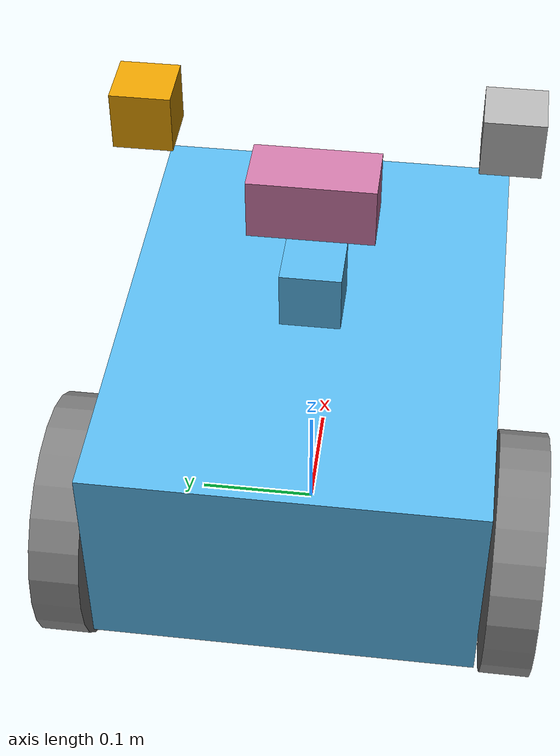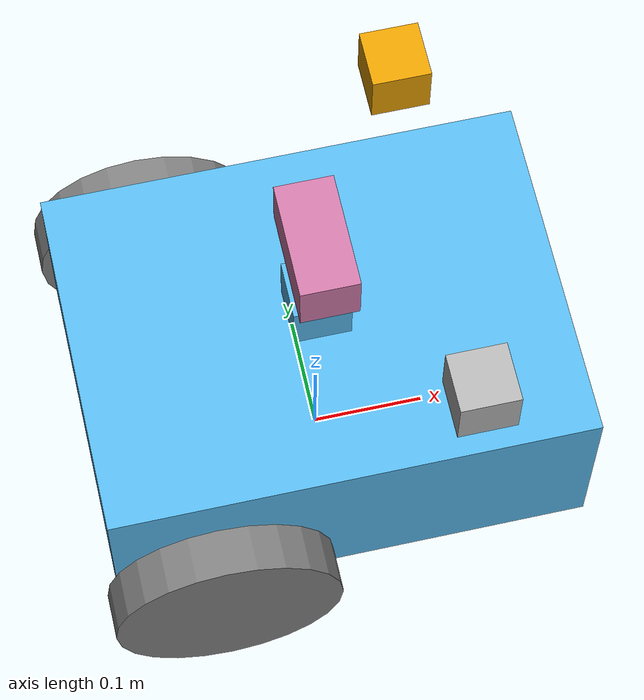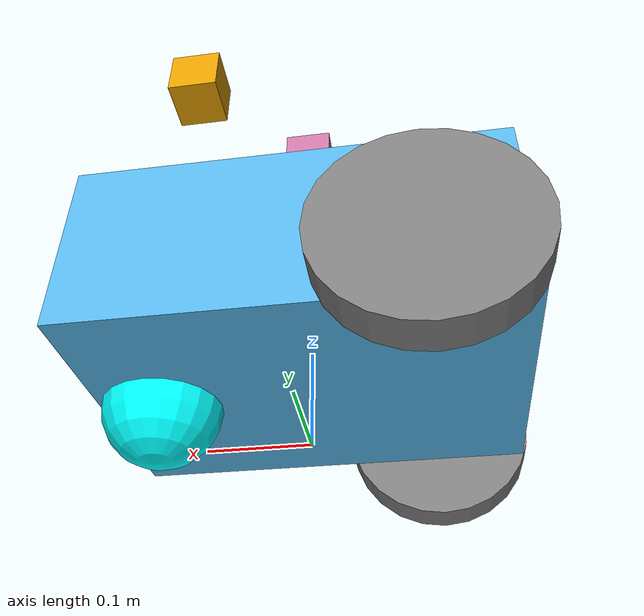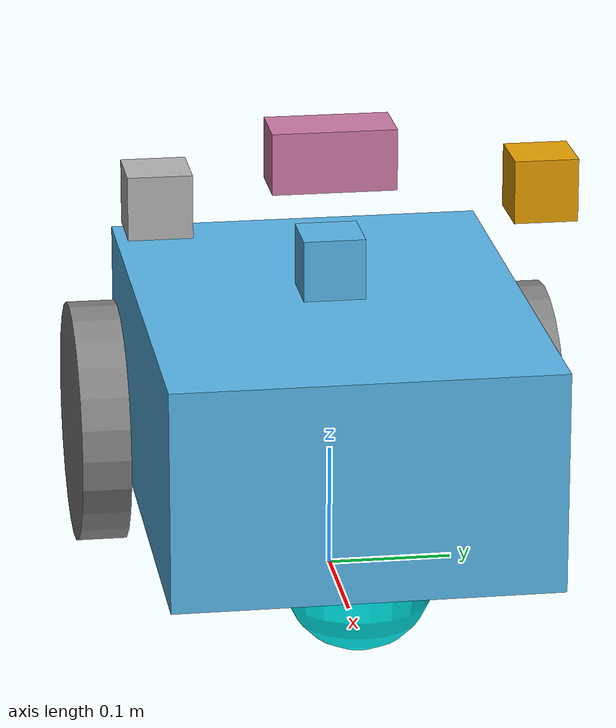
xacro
<?xml version="1.0"?>

<robot name="diffdrive_robot" xmlns:xacro="http://ros.org/wiki/xacro">
    <xacro:include filename="$(find diffdrive_description)/urdf/macros.urdf.xacro" />
    <xacro:property name="base_width" value="0.31" />
    <xacro:property name="base_length" value="0.42" />
    <xacro:property name="base_height" value="0.18" />
    <xacro:property name="base_mass" value="1.0" />

    <xacro:property name="wheel_radius" value="0.10" />
    <xacro:property name="wheel_width" value="0.04" />
    <xacro:property name="wheel_ygap" value="0.025" />
    <xacro:property name="wheel_zoff" value="0.05" />
    <xacro:property name="wheel_xoff" value="0.12" />
    <xacro:property name="wheel_mass" value="0.5" />

    <xacro:property name="caster_xoff" value="0.15" />
    <xacro:property name="caster_mass" value="0.10" />
    <xacro:property name="lidar_zoff" value="0.03" />

    <xacro:arg name="use_3d_lidar" default="false"/>
    <link name="base_footprint" />

    <link name="base_link">
        <xacro:box_inertia m="${base_mass}" w="${base_width}" d="${base_length}" h="${base_height}" />
        <visual>
            <geometry>
                <box size="${base_length} ${base_width} ${base_height}" />
            </geometry>
        </visual>
        <collision>
            <geometry>
                <box size="${base_length} ${base_width} ${base_height}" />
            </geometry>
        </collision>
    </link>

    <joint name="base_joint" type="fixed">
        <parent link="base_footprint" />
        <child link="base_link" />
        <origin xyz="0.0 0.0  ${wheel_radius + base_height/2 - wheel_zoff}" rpy="0 0 0" />
    </joint>

    <xacro:macro name="wheel" params="prefix x_reflect y_reflect">
        <link name="${prefix}_link">
            <visual>
                <origin xyz="0 0 0" rpy="${pi/2} 0 0" />
                <geometry>
                    <cylinder radius="${wheel_radius}" length="${wheel_width}" />
                </geometry>
                <material name="Gray">
                    <color rgba="0.5 0.5 0.5 1.0" />
                </material>
            </visual>
            <collision>
                <origin xyz="0 0 0" rpy="${pi/2} 0 0" />
                <geometry>
                    <cylinder radius="${wheel_radius}" length="${wheel_width}" />
                </geometry>
            </collision>
            <xacro:cylinder_inertia m="${wheel_mass}" r="${wheel_radius}" h="${wheel_width}" />
        </link>

        <joint name="${prefix}_joint" type="continuous">
            <parent link="base_link" />
            <child link="${prefix}_link" />
            <origin
                xyz="${x_reflect*wheel_xoff} ${y_reflect*(base_width/2+wheel_ygap)} ${-wheel_zoff}"
                rpy="0 0 0" />
            <axis xyz="0 1 0" />
        </joint>
    </xacro:macro>

    <xacro:wheel prefix="drivewhl_l" x_reflect="-1" y_reflect="1" />
    <xacro:wheel prefix="drivewhl_r" x_reflect="-1" y_reflect="-1" />

    <ros2_control name="IgnitionSystem" type="system">
        <hardware>
            <plugin>gz_ros2_control/GazeboSimSystem</plugin>
        </hardware>
        <joint name="drivewhl_l_joint">
        <command_interface name="velocity">
            <param name="min">-1</param>
            <param name="max">1</param>
        </command_interface>
        <state_interface name="position"/>
        <state_interface name="velocity"/>
        </joint>
        <joint name="drivewhl_r_joint">
        <command_interface name="velocity">
            <param name="min">-1</param>
            <param name="max">1</param>
        </command_interface>
        <state_interface name="position"/>
        <state_interface name="velocity"/>
        </joint>
    </ros2_control>

    <gazebo>
        <plugin filename="gz_ros2_control-system" name="gz_ros2_control::GazeboSimROS2ControlPlugin">
            <parameters>$(find diffdrive_bringup)/config/controllers.yaml</parameters>
            <ros>
                <remapping>/diff_drive_controller/cmd_vel:=/cmd_vel</remapping>
                <remapping>/diff_drive_controller/odom:=/odom</remapping>
            </ros>
        </plugin>
    </gazebo>

    <link name="front_caster">
        <visual>
            <geometry>
                <sphere radius="${(wheel_radius+wheel_zoff-(base_height/2))}" />
            </geometry>
            <material name="Cyan">
                <color rgba="0 1.0 1.0 1.0" />
            </material>
        </visual>
        <collision>
            <geometry>
                <sphere radius="${(wheel_radius+wheel_zoff-(base_height/2))}" />
            </geometry>
        </collision>
        <xacro:sphere_inertia m="${caster_mass}" r="${(wheel_radius+wheel_zoff-(base_height/2))}" />
    </link>

    <joint name="caster_joint" type="fixed">
        <parent link="base_link" />
        <child link="front_caster" />
        <origin xyz="${caster_xoff} 0.0 ${-(base_height/2)}" rpy="0 0 0" />
    </joint>

    <link name="imu_link">
        <visual>
            <geometry>
                <box size="0.1 0.1 0.1" />
            </geometry>
        </visual>
        <collision>
            <geometry>
                <box size="0.1 0.1 0.1" />
            </geometry>
        </collision>
        <xacro:box_inertia m="0.1" w="0.1" d="0.1" h="0.1" />
    </link>

    <link name="camera_depth_link">
        <visual>
            <geometry>
                <box size="0.05 0.1 0.05" />
            </geometry>
        </visual>
        <collision>
            <geometry>
                <box size="0.05 0.1 0.05" />
            </geometry>
        </collision>
        <xacro:box_inertia m="0.1" w="0.1" d="0.1" h="0.1" />
    </link>

    <link name="right_camera_link">
        <visual>
            <geometry>
                <box size="0.05 0.05 0.05" />
            </geometry>
        </visual>
        <collision>
            <geometry>
                <box size="0.05 0.05 0.05" />
            </geometry>
        </collision>
        <xacro:box_inertia m="0.1" w="0.1" d="0.1" h="0.1" />
    </link>

    <link name="left_camera_link">
        <visual>
            <geometry>
                <box size="0.05 0.05 0.05" />
            </geometry>
        </visual>
        <collision>
            <geometry>
                <box size="0.05 0.05 0.05" />
            </geometry>
        </collision>
        <xacro:box_inertia m="0.1" w="0.1" d="0.1" h="0.1" />
    </link>

    <joint name="imu_joint" type="fixed">
        <parent link="base_link" />
        <child link="imu_link" />
        <origin xyz="0 0 0.01" />
    </joint>

    <joint name="camera_depth_joint" type="fixed">
        <parent link="imu_link" />
        <child link="camera_depth_link" />
        <origin xyz="0 0 0.2" />
    </joint>

    <joint name="right_camera_joint" type="fixed">
        <parent link="imu_link" />
        <child link="right_camera_link" />
        <origin xyz="0.1 -0.15 0.2" rpy="0 0 0"/>
    </joint>

    <joint name="left_camera_joint" type="fixed">
        <parent link="imu_link" />
        <child link="left_camera_link" />
        <origin xyz="0.1 0.15 0.2" rpy="0 0 0"/>
    </joint>

    <gazebo reference="imu_link">
        <sensor name="imu_sensor" type="imu">
            <always_on>1</always_on>
            <update_rate>10</update_rate>
            <visualize>true</visualize>
            <topic>imu</topic>
            <gz_frame_id>imu_link</gz_frame_id>
        </sensor>
    </gazebo>

    <link name="lidar_link">
        <visual>
            <geometry>
                <box size="0.05 0.05 0.05" />
            </geometry>
        </visual>

        <collision>
            <geometry>
                <box size="0.05 0.05 0.05" />
            </geometry>
        </collision>
        <xacro:box_inertia m="0.1" w="0.1" d="0.1" h="0.1" />
    </link>

    <joint name="lidar_joint" type="fixed">
        <parent link="base_link" />
        <child link="lidar_link" />
        <origin xyz="0 0 ${base_height/2 + lidar_zoff}" />
    </joint>

    <gazebo reference="lidar_link">
        <xacro:if value="$(arg use_3d_lidar)">
        <sensor name="RGLLidar" type="custom">
            <plugin filename="RGLServerPluginInstance" name="rgl::RGLServerPluginInstance">
                <range>245
                    <min>0</min>
                    <max>245</max>
                </range>
                <update_rate>20</update_rate>
                <update_on_paused_sim>false</update_on_paused_sim>
                <topic>lidar</topic>
                <frame>lidar_link</frame>
                <pattern_uniform>
                    <horizontal>
                        <samples>600</samples>
                        <min_angle>-3.14159</min_angle>
                        <max_angle>3.14159</max_angle>
                    </horizontal>
                    <vertical>
                        <samples>600</samples>
                        <min_angle>-0.4</min_angle>
                        <max_angle>0.4</max_angle>
                    </vertical>
                </pattern_uniform>
            </plugin>
        </sensor>
        </xacro:if>
        <xacro:unless value="$(arg use_3d_lidar)">
        <sensor name='gpu_lidar' type='gpu_lidar'>"
            <gz_frame_id>base_link</gz_frame_id>
            <topic>scan</topic>
            <update_rate>10</update_rate>
            <ray>
                <scan>
                    <horizontal>
                        <samples>640</samples>
                        <resolution>1</resolution>
                        <min_angle>-2.4</min_angle>
                        <max_angle>2.4</max_angle>
                    </horizontal>
                    <vertical>
                        <samples>1</samples>
                        <resolution>0.01</resolution>
                        <min_angle>0</min_angle>
                        <max_angle>0</max_angle>
                    </vertical>
                </scan>
                <range>
                    <min>0.08</min>
                    <max>10.0</max>
                    <resolution>0.01</resolution>
                </range>
            </ray>
            <always_on>1</always_on>
            <visualize>true</visualize>
        </sensor>
        </xacro:unless>
    </gazebo>

    <gazebo reference="camera_depth_link">
        <sensor name="depth_camera" type="depth_camera">
            <gz_frame_id>camera_depth_link</gz_frame_id>
            <update_rate>10</update_rate>
            <topic>depth_camera</topic>
            <camera>
                <horizontal_fov>1.05</horizontal_fov>
                <image>
                    <width>256</width>
                    <height>256</height>
                    <format>R_FLOAT32</format>
                </image>
                <clip>
                    <near>0.1</near>
                    <far>8.0</far>
                </clip>
            </camera>
    </sensor>
    </gazebo>
    <gazebo reference="right_camera_link">
    <sensor name="right_camera" type="camera">
        <always_on>true</always_on>
        <update_rate>20</update_rate>
        <topic>right_camera/image_raw</topic>
        <gz_frame_id>right_camera_link</gz_frame_id>
        <camera name="right_camera">
            <image>
                <width>1280</width>
                <height>720</height>
            </image>
            <camera_info_topic>right_camera/camera_info</camera_info_topic>
        </camera>
    </sensor>
    </gazebo>
    <gazebo reference="left_camera_link">
    <sensor name="left_camera" type="camera">
        <always_on>true</always_on>
        <update_rate>20</update_rate>
        <topic>left_camera/image_raw</topic>
        <gz_frame_id>left_camera_link</gz_frame_id>
        <camera name="left_camera">
            <image>
                <width>1280</width>
                <height>720</height>
            </image>
            <camera_info_topic>left_camera/camera_info</camera_info_topic>
        </camera>
    </sensor>

    </gazebo>
</robot>

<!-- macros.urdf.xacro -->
<robot name="robot" xmlns:xacro="http://ros.org/wiki/xacro">
  <xacro:macro name="box_inertia" params="m w h d">
    <inertial>
      <origin xyz="0 0 0" rpy="${pi/2} 0 ${pi/2}"/>
      <mass value="${m}"/>
      <inertia ixx="${(m/12) * (h*h + d*d)}" ixy="0.0" ixz="0.0" iyy="${(m/12) * (w*w + d*d)}" iyz="0.0" izz="${(m/12) * (w*w + h*h)}"/>
    </inertial>
  </xacro:macro>

  <xacro:macro name="cylinder_inertia" params="m r h">
    <inertial>
      <origin xyz="0 0 0" rpy="${pi/2} 0 0" />
      <mass value="${m}"/>
      <inertia ixx="${(m/12) * (3*r*r + h*h)}" ixy = "0" ixz = "0" iyy="${(m/12) * (3*r*r + h*h)}" iyz = "0" izz="${(m/2) * (r*r)}"/>
    </inertial>
  </xacro:macro>

  <xacro:macro name="sphere_inertia" params="m r">
    <inertial>
      <mass value="${m}"/>
      <inertia ixx="${(2/5) * m * (r*r)}" ixy="0.0" ixz="0.0" iyy="${(2/5) * m * (r*r)}" iyz="0.0" izz="${(2/5) * m * (r*r)}"/>
    </inertial>
  </xacro:macro>
</robot>
